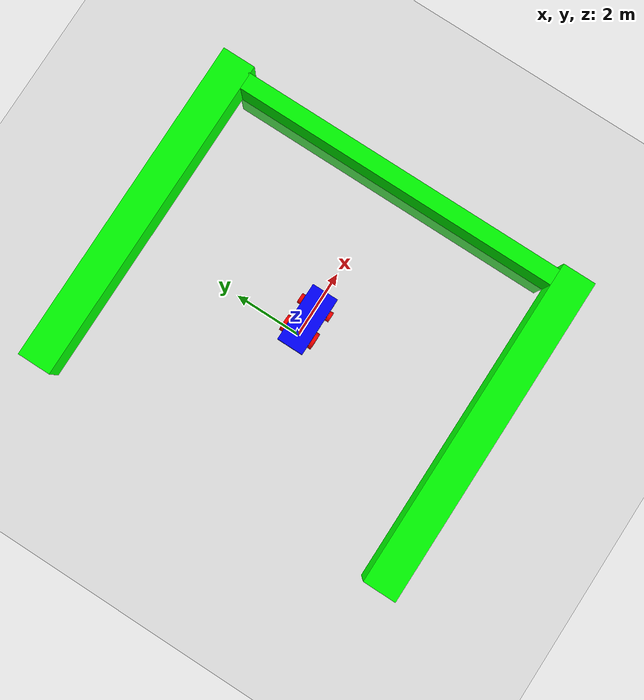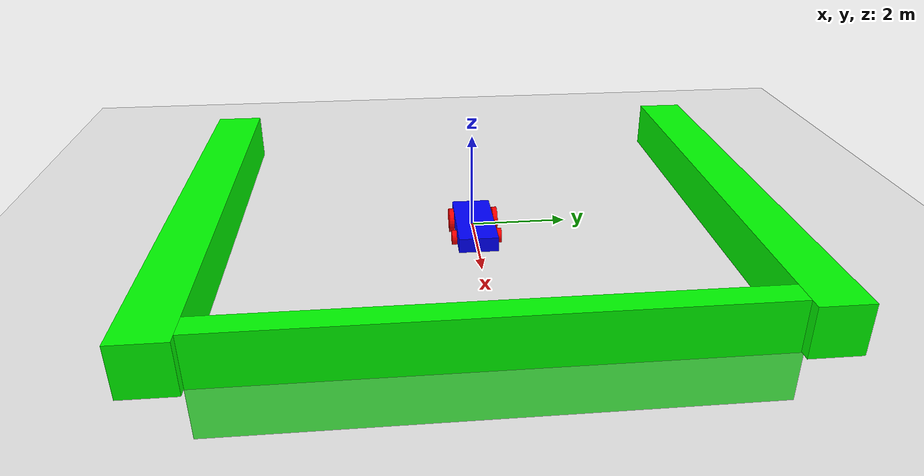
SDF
<sdf version='1.9'>
  <world name='car_world'>
    <physics name='1ms' type='ignored'>
      <max_step_size>0.001</max_step_size>
      <real_time_factor>1</real_time_factor>
      <real_time_update_rate>1000</real_time_update_rate>
    </physics>
    <plugin name='gz::sim::systems::Physics' filename='gz-sim-physics-system'/>
    <plugin name='gz::sim::systems::UserCommands' filename='gz-sim-user-commands-system'/>
    <plugin name='gz::sim::systems::SceneBroadcaster' filename='gz-sim-scene-broadcaster-system'/>
    <plugin name='ignition::gazebo::systems::Imu' filename='libignition-gazebo-imu-system.so'/>
    <plugin name='ignition::gazebo::systems::Contact' filename='libignition-gazebo-contact-system.so'/>
    <plugin name='ignition::gazebo::systems::TriggeredPublisher' filename='ignition-gazebo-triggered-publisher-system'>
      <input type='ignition.msgs.Int32' topic='/keyboard/keypress'>
        <match field='data'>16777235</match>
      </input>
      <output type='ignition.msgs.Twist' topic='/cmd_vel'>linear: {x: 0.5}, angular: {z: 0.0}</output>
    </plugin>
    <plugin name='ignition::gazebo::systems::TriggeredPublisher' filename='ignition-gazebo-triggered-publisher-system'>
      <input type='ignition.msgs.Int32' topic='/keyboard/keypress'>
        <match field='data'>16777237</match>
      </input>
      <output type='ignition.msgs.Twist' topic='/cmd_vel'>linear: {x: -0.5}, angular: {z: 0.0}</output>
    </plugin>
    <plugin name='ignition::gazebo::systems::TriggeredPublisher' filename='ignition-gazebo-triggered-publisher-system'>
      <input type='ignition.msgs.Int32' topic='/keyboard/keypress'>
        <match field='data'>16777236</match>
      </input>
      <output type='ignition.msgs.Twist' topic='/cmd_vel'>linear: {x: 0.0}, angular: {z: -0.5}</output>
    </plugin>
    <plugin name='ignition::gazebo::systems::TriggeredPublisher' filename='ignition-gazebo-triggered-publisher-system'>
      <input type='ignition.msgs.Int32' topic='/keyboard/keypress'>
        <match field='data'>16777234</match>
      </input>
      <output type='ignition.msgs.Twist' topic='/cmd_vel'>linear: {x: 0.0}, angular: {z: 0.5}</output>
    </plugin>
    <plugin name='ignition::gazebo::systems::TriggeredPublisher' filename='ignition-gazebo-triggered-publisher-system'>
      <input type='ignition.msgs.Boolean' topic='/wall/touched'>
        <match>data: true</match>
      </input>
      <output type='ignition.msgs.Twist' topic='/cmd_vel'>linear: {x: 0.0}, angular: {z: 0.0}</output>
    </plugin>
    <plugin name='ignition::gazebo::systems::Sensors' filename='libignition-gazebo-sensors-system.so'>
      <render_engine>ogre2</render_engine>
    </plugin>
    <gravity>0 0 -9.8</gravity>
    <magnetic_field>6e-06 2.3e-05 -4.2e-05</magnetic_field>
    <atmosphere type='adiabatic'/>
    <scene>
      <ambient>0.4 0.4 0.4 1</ambient>
      <background>0.7 0.7 0.7 1</background>
      <shadows>true</shadows>
    </scene>
    <model name='ground_plane'>
      <static>true</static>
      <link name='link'>
        <collision name='collision'>
          <geometry>
            <plane>
              <normal>0 0 1</normal>
              <size>1 1</size>
            </plane>
          </geometry>
          <surface>
            <friction>
              <ode/>
            </friction>
            <bounce/>
            <contact/>
          </surface>
        </collision>
        <visual name='visual'>
          <geometry>
            <plane>
              <normal>0 0 1</normal>
              <size>100 100</size>
            </plane>
          </geometry>
          <material>
            <ambient>0.8 0.8 0.8 1</ambient>
            <diffuse>0.8 0.8 0.8 1</diffuse>
            <specular>0.8 0.8 0.8 1</specular>
          </material>
        </visual>
        <pose>0 0 0 0 -0 0</pose>
        <inertial>
          <pose>0 0 0 0 -0 0</pose>
          <mass>1</mass>
          <inertia>
            <ixx>1</ixx>
            <ixy>0</ixy>
            <ixz>0</ixz>
            <iyy>1</iyy>
            <iyz>0</iyz>
            <izz>1</izz>
          </inertia>
        </inertial>
        <enable_wind>false</enable_wind>
      </link>
      <pose>0 0 0 0 -0 0</pose>
      <self_collide>false</self_collide>
    </model>
    <model name='vehicle_blue' canonical_link='chassis'>
      <pose>-0.019352 3e-06 6e-06 0 2.4e-05 0</pose>
      <frame name='lidar_frame' attached_to='chassis'>
        <pose>0.8 0 0.5 0 0 0</pose>
      </frame>
      <link name='chassis'>
        <pose>0.5 0 0.2 0 -0 0</pose>
        <inertial>
          <mass>1.14395</mass>
          <inertia>
            <ixx>0.095328999999999997</ixx>
            <ixy>0</ixy>
            <ixz>0</ixz>
            <iyy>0.38131700000000002</iyy>
            <iyz>0</iyz>
            <izz>0.47664600000000001</izz>
          </inertia>
          <pose>0 0 0 0 -0 0</pose>
        </inertial>
        <visual name='visual'>
          <geometry>
            <box>
              <size>1.8 0.8 0.3</size>
            </box>
          </geometry>
          <material>
            <ambient>0 0 1 1</ambient>
            <diffuse>0 0 1 1</diffuse>
            <specular>0 0 1 1</specular>
          </material>
        </visual>
        <collision name='collision'>
          <geometry>
            <box>
              <size>1.8 0.8 0.3</size>
            </box>
          </geometry>
          <surface>
            <friction>
              <ode/>
            </friction>
            <bounce/>
            <contact/>
          </surface>
        </collision>
        <sensor name='imu_sensor' type='imu'>
          <pose>0 0 0 0 -0 0</pose>
          <topic>imu</topic>
          <update_rate>1</update_rate>
          <enable_metrics>false</enable_metrics>
          <imu>
            <orientation_reference_frame>
              <localization>CUSTOM</localization>
              <custom_rpy>0 0 0</custom_rpy>
              <grav_dir_x>1 0 0</grav_dir_x>
            </orientation_reference_frame>
            <angular_velocity>
              <x>
                <noise type='none'>
                  <mean>0</mean>
                  <stddev>0</stddev>
                  <bias_mean>0</bias_mean>
                  <bias_stddev>0</bias_stddev>
                  <dynamic_bias_stddev>0</dynamic_bias_stddev>
                  <dynamic_bias_correlation_time>0</dynamic_bias_correlation_time>
                  <precision>0</precision>
                </noise>
              </x>
              <y>
                <noise type='none'>
                  <mean>0</mean>
                  <stddev>0</stddev>
                  <bias_mean>0</bias_mean>
                  <bias_stddev>0</bias_stddev>
                  <dynamic_bias_stddev>0</dynamic_bias_stddev>
                  <dynamic_bias_correlation_time>0</dynamic_bias_correlation_time>
                  <precision>0</precision>
                </noise>
              </y>
              <z>
                <noise type='none'>
                  <mean>0</mean>
                  <stddev>0</stddev>
                  <bias_mean>0</bias_mean>
                  <bias_stddev>0</bias_stddev>
                  <dynamic_bias_stddev>0</dynamic_bias_stddev>
                  <dynamic_bias_correlation_time>0</dynamic_bias_correlation_time>
                  <precision>0</precision>
                </noise>
              </z>
            </angular_velocity>
            <linear_acceleration>
              <x>
                <noise type='none'>
                  <mean>0</mean>
                  <stddev>0</stddev>
                  <bias_mean>0</bias_mean>
                  <bias_stddev>0</bias_stddev>
                  <dynamic_bias_stddev>0</dynamic_bias_stddev>
                  <dynamic_bias_correlation_time>0</dynamic_bias_correlation_time>
                  <precision>0</precision>
                </noise>
              </x>
              <y>
                <noise type='none'>
                  <mean>0</mean>
                  <stddev>0</stddev>
                  <bias_mean>0</bias_mean>
                  <bias_stddev>0</bias_stddev>
                  <dynamic_bias_stddev>0</dynamic_bias_stddev>
                  <dynamic_bias_correlation_time>0</dynamic_bias_correlation_time>
                  <precision>0</precision>
                </noise>
              </y>
              <z>
                <noise type='none'>
                  <mean>0</mean>
                  <stddev>0</stddev>
                  <bias_mean>0</bias_mean>
                  <bias_stddev>0</bias_stddev>
                  <dynamic_bias_stddev>0</dynamic_bias_stddev>
                  <dynamic_bias_correlation_time>0</dynamic_bias_correlation_time>
                  <precision>0</precision>
                </noise>
              </z>
            </linear_acceleration>
            <enable_orientation>true</enable_orientation>
          </imu>
	<sensor name="camera" type="camera">
	  <pose>0 0 1 0 0 0</pose>
	  <update_rate>30</update_rate>
	  <camera>
	    <horizontal_fov>1.047</horizontal_fov>
	    <image>
	      <width>640</width>
	      <height>480</height>
	      <format>R8G8B8</format>
	    </image>
	    <clip>
	      <near>0.1</near>
	      <far>100</far>
	    </clip>
	  </camera>
	  <always_on>true</always_on>
	  <visualize>true</visualize>
	  <topic>/camera/image_raw</topic>
	</sensor>
	</sensor>
	<sensor name='gpu_lidar' type='gpu_lidar'>
          <pose>0.8 0 0.5 0 -0 0</pose>
          <topic>lidar</topic>
          <update_rate>10</update_rate>
          <enable_metrics>false</enable_metrics>
          <lidar>
            <scan>
              <horizontal>
                <samples>640</samples>
                <resolution>1</resolution>
                <min_angle>-1.3962600000000001</min_angle>
                <max_angle>1.3962600000000001</max_angle>
              </horizontal>
              <vertical>
                <samples>1</samples>
                <min_angle>0</min_angle>
                <max_angle>0</max_angle>
                <resolution>0.01</resolution>
              </vertical>
            </scan>
            <range>
              <min>0.080000000000000002</min>
              <max>10</max>
              <resolution>0.01</resolution>
            </range>
            <noise>
              <type>none</type>
              <mean>0</mean>
              <stddev>0</stddev>
            </noise>
            <visibility_mask>4294967295</visibility_mask>
          </lidar>
        </sensor>
        <enable_wind>false</enable_wind>
      </link>
      <link name='left_wheel1'>
        <pose>0.1 0.46 0.15 -1.5707 -0.1 0</pose>
        <inertial>
          <mass>1</mass>
          <inertia>
            <ixx>0.043333000000000003</ixx>
            <ixy>0</ixy>
            <ixz>0</ixz>
            <iyy>0.043333000000000003</iyy>
            <iyz>0</iyz>
            <izz>0.080000000000000002</izz>
          </inertia>
          <pose>0 0 0 0 -0 0</pose>
        </inertial>
        <visual name='visual'>
          <geometry>
            <cylinder>
              <radius>0.24999999999999999</radius>
              <length>0.10000000000000001</length>
            </cylinder>
          </geometry>
          <material>
            <ambient>1 0 0 1</ambient>
            <diffuse>1 0 0 1</diffuse>
            <specular>1 0 0 1</specular>
          </material>
        </visual>
        <collision name='collision'>
          <geometry>
            <cylinder>
              <radius>0.14999999999999999</radius>
              <length>0.10000000000000001</length>
            </cylinder>
          </geometry>
          <surface>
            <friction>
              <ode/>
            </friction>
            <bounce/>
            <contact/>
          </surface>
        </collision>
        <enable_wind>false</enable_wind>
      </link>
      <link name='right_wheel1'>
        <pose>0.1 -0.46 0.15 -1.5707 -0.1 0</pose>
        <inertial>
          <mass>1</mass>
          <inertia>
            <ixx>0.043333000000000003</ixx>
            <ixy>0</ixy>
            <ixz>0</ixz>
            <iyy>0.043333000000000003</iyy>
            <iyz>0</iyz>
            <izz>0.080000000000000002</izz>
          </inertia>
          <pose>0 0 0 0 -0 0</pose>
        </inertial>
        <visual name='visual'>
          <geometry>
            <cylinder>
              <radius>0.24999999999999999</radius>
              <length>0.10000000000000001</length>
            </cylinder>
          </geometry>
          <material>
            <ambient>1 0 0 1</ambient>
            <diffuse>1 0 0 1</diffuse>
            <specular>1 0 0 1</specular>
          </material>
        </visual>
        <collision name='collision'>
          <geometry>
            <cylinder>
              <radius>0.14999999999999999</radius>
              <length>0.10000000000000001</length>
            </cylinder>
          </geometry>
          <surface>
            <friction>
              <ode/>
            </friction>
            <bounce/>
            <contact/>
          </surface>
        </collision>
        <enable_wind>false</enable_wind>
      </link>
      <link name='right_wheel2'>
        <pose>0.9 -0.46 0.15 -1.5707 -0.1 0</pose>
        <inertial>
          <mass>1</mass>
          <inertia>
            <ixx>0.043333000000000003</ixx>
            <ixy>0</ixy>
            <ixz>0</ixz>
            <iyy>0.043333000000000003</iyy>
            <iyz>0</iyz>
            <izz>0.080000000000000002</izz>
          </inertia>
          <pose>0 0 0 0 -0 0</pose>
        </inertial>
        <visual name='visual'>
          <geometry>
            <cylinder>
              <radius>0.14999999999999999</radius>
              <length>0.10000000000000001</length>
            </cylinder>
          </geometry>
          <material>
            <ambient>1 0 0 1</ambient>
            <diffuse>1 0 0 1</diffuse>
            <specular>1 0 0 1</specular>
          </material>
        </visual>
        <collision name='collision'>
          <geometry>
            <cylinder>
              <radius>0.14999999999999999</radius>
              <length>0.10000000000000001</length>
            </cylinder>
          </geometry>
          <surface>
            <friction>
              <ode/>
            </friction>
            <bounce/>
            <contact/>
          </surface>
        </collision>
        <enable_wind>false</enable_wind>
      </link>
      <link name='left_wheel2'>
        <pose>0.9 0.46 0.15 -1.5707 -0.1 0</pose>
        <inertial>
          <mass>1</mass>
          <inertia>
            <ixx>0.043333000000000003</ixx>
            <ixy>0</ixy>
            <ixz>0</ixz>
            <iyy>0.043333000000000003</iyy>
            <iyz>0</iyz>
            <izz>0.080000000000000002</izz>
          </inertia>
          <pose>0 0 0 0 -0 0</pose>
        </inertial>
        <visual name='visual'>
          <geometry>
            <cylinder>
              <radius>0.14999999999999999</radius>
              <length>0.10000000000000001</length>
            </cylinder>
          </geometry>
          <material>
            <ambient>1 0 0 1</ambient>
            <diffuse>1 0 0 1</diffuse>
            <specular>1 0 0 1</specular>
          </material>
        </visual>
        <collision name='collision'>
          <geometry>
            <cylinder>
              <radius>0.14999999999999999</radius>
              <length>0.10000000000000001</length>
            </cylinder>
          </geometry>
          <surface>
            <friction>
              <ode/>
            </friction>
            <bounce/>
            <contact/>
          </surface>
        </collision>
        <enable_wind>false</enable_wind>
      </link>
      <joint name='left_wheel1_joint' type='revolute'>
        <pose>0 -0 0 0 0 -0</pose>
        <parent>chassis</parent>
        <child>left_wheel1</child>
        <axis>
          <xyz>0 9.6e-05 1</xyz>
          <limit>
            <lower>-1.7976900000000001e+308</lower>
            <upper>1.7976900000000001e+308</upper>
            <effort>inf</effort>
            <velocity>inf</velocity>
            <stiffness>100000000</stiffness>
            <dissipation>1</dissipation>
          </limit>
          <dynamics>
            <spring_reference>0</spring_reference>
            <spring_stiffness>0</spring_stiffness>
            <damping>0</damping>
            <friction>0</friction>
          </dynamics>
        </axis>
      </joint>
      <joint name='left_wheel2_joint' type='revolute'>
        <pose>0 -0 0 0 0 -0</pose>
        <parent>chassis</parent>
        <child>left_wheel2</child>
        <axis>
          <xyz>0 9.6e-05 1</xyz>
          <limit>
            <lower>-1.7976900000000001e+308</lower>
            <upper>1.7976900000000001e+308</upper>
            <effort>inf</effort>
            <velocity>inf</velocity>
            <stiffness>100000000</stiffness>
            <dissipation>1</dissipation>
          </limit>
          <dynamics>
            <spring_reference>0</spring_reference>
            <spring_stiffness>0</spring_stiffness>
            <damping>0</damping>
            <friction>0</friction>
          </dynamics>
        </axis>
      </joint>
      <joint name='right_wheel1_joint' type='revolute'>
        <pose>0 0 -0 0 0 -0</pose>
        <parent>chassis</parent>
        <child>right_wheel1</child>
        <axis>
          <xyz>0 9.6e-05 1</xyz>
          <limit>
            <lower>-1.7976900000000001e+308</lower>
            <upper>1.7976900000000001e+308</upper>
            <effort>inf</effort>
            <velocity>inf</velocity>
            <stiffness>100000000</stiffness>
            <dissipation>1</dissipation>
          </limit>
          <dynamics>
            <spring_reference>0</spring_reference>
            <spring_stiffness>0</spring_stiffness>
            <damping>0</damping>
            <friction>0</friction>
          </dynamics>
        </axis>
      </joint>
      <joint name='right_wheel2_joint' type='revolute'>
        <pose>0 0 -0 0 0 -0</pose>
        <parent>chassis</parent>
        <child>right_wheel2</child>
        <axis>
          <xyz>0 9.6e-05 1</xyz>
          <limit>
            <lower>-1.7976900000000001e+308</lower>
            <upper>1.7976900000000001e+308</upper>
            <effort>inf</effort>
            <velocity>inf</velocity>
            <stiffness>100000000</stiffness>
            <dissipation>1</dissipation>
          </limit>
          <dynamics>
            <spring_reference>0</spring_reference>
            <spring_stiffness>0</spring_stiffness>
            <damping>0</damping>
            <friction>0</friction>
          </dynamics>
        </axis>
      </joint>
      <plugin name='ignition::gazebo::systems::DiffDrive' filename='libignition-gazebo-diff-drive-system.so'>
        <left_joint>left_wheel1_joint</left_joint>
        <left_joint>left_wheel2_joint</left_joint>
        <right_joint>right_wheel1_joint</right_joint>
        <right_joint>right_wheel2_joint</right_joint>
        <wheel_separation>0.92</wheel_separation>
        <wheel_radius>0.15</wheel_radius>
        <odom_publish_frequency>1</odom_publish_frequency>
        <topic>cmd_vel</topic>
      </plugin>
      <static>false</static>
      <self_collide>false</self_collide>
    </model>
    <model name='wall'>
      <static>true</static>
      <pose>5 0 0 0 -0 0</pose>
      <link name='box'>
        <pose>0 0 0 0 -0 0</pose>
        <visual name='visual'>
          <geometry>
            <box>
              <size>0.5 10 2</size>
            </box>
          </geometry>
          <material>
            <ambient>0 1 0 1</ambient>
            <diffuse>0 1 0 1</diffuse>
            <specular>0 1 0 1</specular>
          </material>
        </visual>
        <collision name='collision'>
          <geometry>
            <box>
              <size>0.5 10 2</size>
            </box>
          </geometry>
          <surface>
            <friction>
              <ode/>
            </friction>
            <bounce/>
            <contact/>
          </surface>
        </collision>
        <sensor name='sensor_contact' type='contact'>
          <contact>
            <collision>collision</collision>
            <topic>__default_topic__</topic>
          </contact>
        </sensor>
        <inertial>
          <pose>0 0 0 0 -0 0</pose>
          <mass>1</mass>
          <inertia>
            <ixx>1</ixx>
            <ixy>0</ixy>
            <ixz>0</ixz>
            <iyy>1</iyy>
            <iyz>0</iyz>
            <izz>1</izz>
          </inertia>
        </inertial>
        <enable_wind>false</enable_wind>
      </link>
      <plugin name='ignition::gazebo::systems::TouchPlugin' filename='libignition-gazebo-touchplugin-system.so'>
        <target>vehicle_blue</target>
        <namespace>wall</namespace>
        <time>0.001</time>
        <enabled>true</enabled>
      </plugin>
      <plugin name="camera_controller" filename="libgazebo_ros_camera.so">
	  <camera_name>camera</camera_name>
	  <frame_name>camera_link</frame_name>
	  <image_topic_name>image_raw</image_topic_name>
	  <camera_info_topic_name>camera_info</camera_info_topic_name>
	  <update_rate>30</update_rate>
	</plugin>

      <self_collide>false</self_collide>
    </model>
    <model name='box'>
      <pose>0.46099 5.44974 0.5 0 -0 0</pose>
      <link name='box_link'>
        <inertial>
          <inertia>
            <ixx>0.16666</ixx>
            <ixy>0</ixy>
            <ixz>0</ixz>
            <iyy>0.16666</iyy>
            <iyz>0</iyz>
            <izz>0.16666</izz>
          </inertia>
          <mass>1</mass>
          <pose>0 0 0 0 -0 0</pose>
        </inertial>
        <collision name='box_collision'>
          <geometry>
            <box>
              <size>10 1 1</size>
            </box>
          </geometry>
          <surface>
            <friction>
              <ode/>
            </friction>
            <bounce/>
            <contact/>
          </surface>
        </collision>
        <visual name='box_visual'>
          <geometry>
            <box>
              <size>10 1 1</size>
            </box>
          </geometry>
          <material>
            <ambient>0.0 1.0 0.0 1</ambient>
            <diffuse>0.0 1.0 0.0 1</diffuse>
            <specular>0 1 0 1</specular>
          </material>
        </visual>
        <pose>0 0 0 0 -0 0</pose>
        <enable_wind>false</enable_wind>
      </link>
      <static>false</static>
      <self_collide>false</self_collide>
    </model>
    <model name='box_0'>
      <pose>0.43474 -5.49881 0.5 0 -0 0</pose>
      <link name='box_link'>
        <inertial>
          <inertia>
            <ixx>0.16666</ixx>
            <ixy>0</ixy>
            <ixz>0</ixz>
            <iyy>0.16666</iyy>
            <iyz>0</iyz>
            <izz>0.16666</izz>
          </inertia>
          <mass>1</mass>
          <pose>0 0 0 0 -0 0</pose>
        </inertial>
        <collision name='box_collision'>
          <geometry>
            <box>
              <size>10 1 1</size>
            </box>
          </geometry>
          <surface>
            <friction>
              <ode/>
            </friction>
            <bounce/>
            <contact/>
          </surface>
        </collision>
        <visual name='box_visual'>
          <geometry>
            <box>
              <size>10 1 1</size>
            </box>
          </geometry>
          <material>
            <ambient>0.0 1.0 0.0 1</ambient>
            <diffuse>0.0 1.0 0.0 1</diffuse>
            <specular>0 1 0 1</specular>
          </material>
        </visual>
        <pose>0 0 0 0 -0 0</pose>
        <enable_wind>false</enable_wind>
      </link>
      <link name="camera_link">
	  <pose>0 0 3 0 0 0</pose> <!-- Ajuste a posição conforme necessário -->

	  <sensor name="camera" type="camera">
	    <pose>0 0 3 0 0 0</pose>
	    <update_rate>30</update_rate>
	    <camera>
	      <horizontal_fov>1.047</horizontal_fov>
	      <image>
		<width>640</width>
		<height>480</height>
		<format>R8G8B8</format>
	      </image>
	      <clip>
		<near>0.1</near>
		<far>1</far>
	      </clip>
	    </camera>
	    <always_on>true</always_on>
	    <visualize>true</visualize>
	    <topic>/camera/image_raw</topic>
	  </sensor>
	</link>

      <static>false</static>
      <self_collide>false</self_collide>
    </model>
    <light name='sun' type='directional'>
      <pose>0 0 10 0 -0 0</pose>
      <cast_shadows>true</cast_shadows>
      <intensity>1</intensity>
      <direction>-0.5 0.1 -0.9</direction>
      <diffuse>0.8 0.8 0.8 1</diffuse>
      <specular>0.2 0.2 0.2 1</specular>
      <attenuation>
        <range>1000</range>
        <linear>0.01</linear>
        <constant>0.90000000000000002</constant>
        <quadratic>0.001</quadratic>
      </attenuation>
      <spot>
        <inner_angle>0</inner_angle>
        <outer_angle>0</outer_angle>
        <falloff>0</falloff>
      </spot>
    </light>
  </world>
</sdf>
